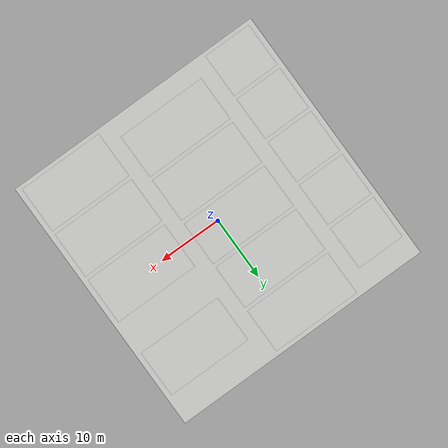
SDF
<?xml version="1.0" ?>
<sdf version="1.7">
  <model name="aws_robomaker_warehouse_GroundB_01_bayline">
    <link name="link">
      <inertial>
        <mass>1000</mass>
		<inertia>
          <ixx>36425.342</ixx>
          <ixy>0</ixy>
          <ixz>0</ixz>
          <iyy>16289.083</iyy>
          <iyz>0</iyz>
          <izz>52711.849</izz>
        </inertia>
      </inertial>
      <collision name="collision">
        <geometry>
          <mesh>
            <uri>model://aws_robomaker_warehouse_GroundB_01_bayline/meshes/aws_robomaker_warehouse_GroundB_01_bayline_collision.DAE</uri>
            <scale>1 1 1</scale>
          </mesh>
        </geometry>
        <surface>
          <friction>
            <ode>
              <mu>100</mu>
              <mu2>50</mu2>
              <fdir1>0 0 0</fdir1>
              <slip1>0</slip1>
              <slip2>0</slip2>
            </ode>
          </friction>
        </surface>
      </collision>
      <visual name="visual">
	    <geometry>
          <mesh>
            <uri>model://aws_robomaker_warehouse_GroundB_01_bayline/meshes/aws_robomaker_warehouse_GroundB_01_bayline_visual.DAE</uri>
          </mesh>
        </geometry>
</visual>
    </link>
<static>1</static>
  </model>
</sdf>
